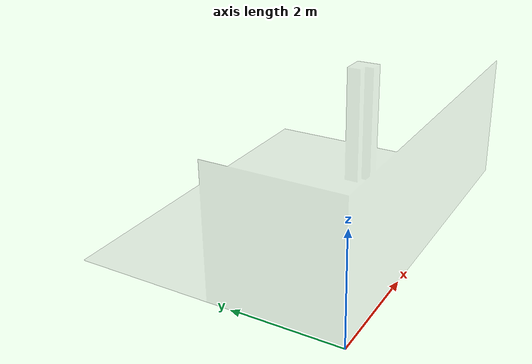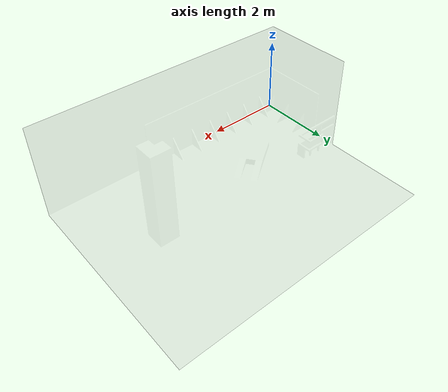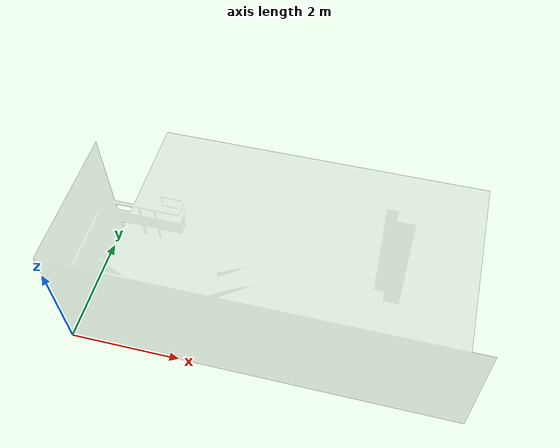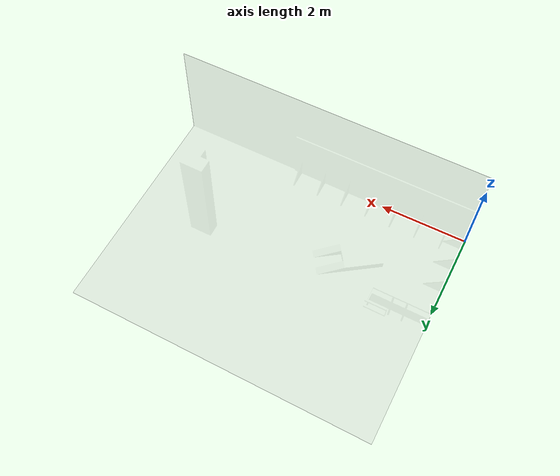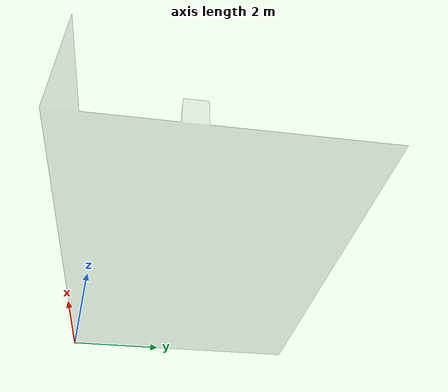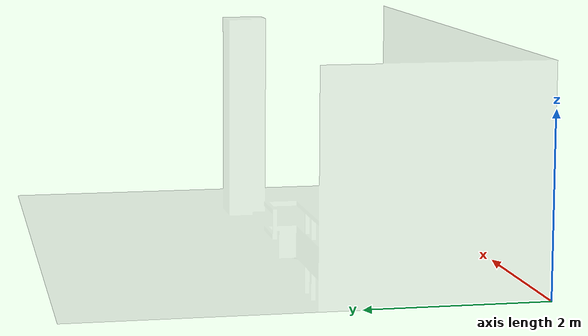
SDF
<?xml version="1.0" ?>
<sdf version="1.4">
  <model name="robotica_2015">
    <static>true</static>
    <link name="link">
      <inertial>
        <mass>1000</mass>
      </inertial>
      <collision name="collision">
        <geometry>
          <mesh>
            <uri>model://probotica_2015/meshes/robotica_2015.stl</uri>
          </mesh>
        </geometry>
      </collision>
      <visual name="visual">
        <transparency>0.75</transparency>
        <geometry>
          <mesh>
            <uri>model://robotica_2015/meshes/robotica_2015.stl</uri>
          </mesh>
        </geometry>
      </visual>
    </link>
  </model>
</sdf>
